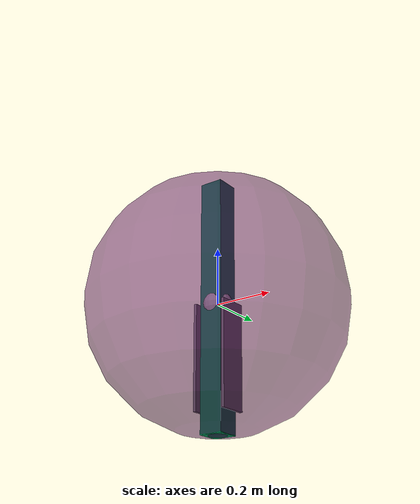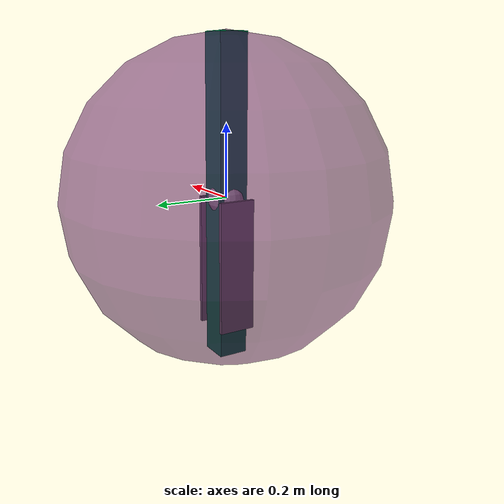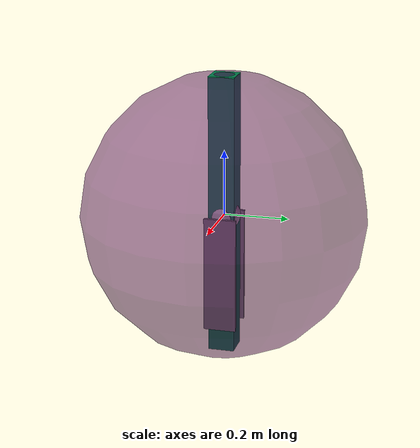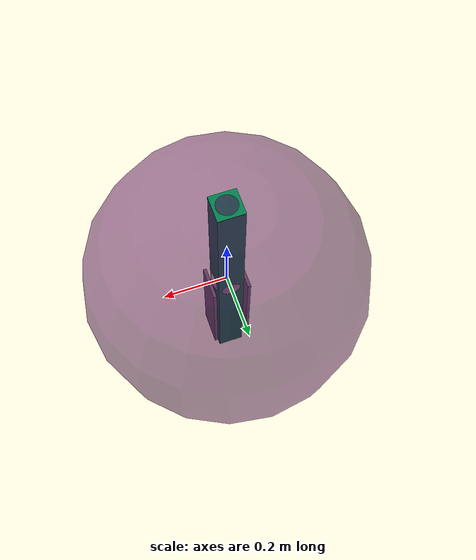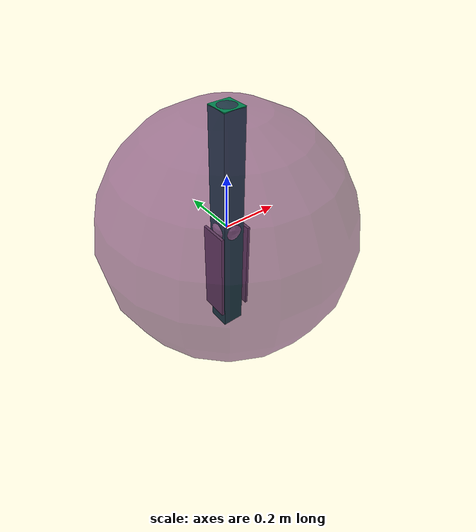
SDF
<sdf version='1.9'>
  <model name='bouncy'>

    <link name='outer_ball'>
      <inertial>
        <pose>0 0 0 0 0 0</pose>
        <mass>0.5</mass>
        <inertia>
          <ixx>0.064000000000000001</ixx>
          <ixy>0</ixy>
          <ixz>0</ixz>
          <iyy>0.064000000000000001</iyy>
          <iyz>0</iyz>
          <izz>0.064000000000000001</izz>
        </inertia>
      </inertial>
      <collision name='outer_ball_collision'>
        <pose>0 0 0 0 0 0</pose>
        <geometry>
          <sphere>
            <radius>0.44</radius>
          </sphere>
        </geometry>
        <surface>
          <bounce>
            <restitution_coefficient>1</restitution_coefficient>
            <threshold>0.10000000000000001</threshold>
          </bounce>
          <friction>
            <torsional>
              <coefficient>0.20000000000000001</coefficient>
              <surface_radius>0.5</surface_radius>
              <use_patch_radius>false</use_patch_radius>
            </torsional>
            <ode/>
          </friction>
          <contact>
            <poissons_ratio>0.48999999999999999</poissons_ratio>
            <elastic_modulus>0.29999999999999999</elastic_modulus>
            <ode/>
          </contact>
        </surface>
      </collision>
      <visual name='outer_ball_visual'>
        <pose>0 0 0 0 0 0</pose>
        <geometry>
          <sphere>
            <radius>0.44</radius>
          </sphere>
        </geometry>
        <material>
          <ambient>0.3 0 0.3 0.5</ambient>
          <diffuse>0.3 0 0.3 0.5</diffuse>
          <specular>0 0 0 0.5</specular>
          <emissive>0 0 0 0.5</emissive>
        </material>
      </visual>
      <velocity_decay>
        <linear>0.10000000000000001</linear>
        <angular>0.10000000000000001</angular>
      </velocity_decay>
    </link>

    <joint name='joint_outer_ball_rotation_engin' type='revolute'>
      <pose relative_to='outer_ball'>0 0 0 0 0 0</pose>
      <parent>outer_ball</parent>
      <child>rotation_engin</child>
      <axis>
        <xyz>0 0 1</xyz>
        <limit>
          <effort>10000</effort>
          <velocity>5</velocity>
          <lower>-10000000000000000</lower>
          <upper>10000000000000000</upper>
        </limit>
        <dynamics>
          <spring_reference>0</spring_reference>
          <spring_stiffness>0</spring_stiffness>
        </dynamics>
      </axis>
    </joint>
    <link name='rotation_engin'>
      <pose relative_to='joint_outer_ball_rotation_engin'>0 0 0 0 0 0</pose>
      <inertial>
        <pose>0 0 0 0 0 0</pose>
        <mass>1.2</mass>
        <inertia>
          <ixx>0.053800000000000001</ixx>
          <ixy>0</ixy>
          <ixz>0</ixz>
          <iyy>0.053800000000000001</iyy>
          <iyz>0</iyz>
          <izz>0.00106</izz>
        </inertia>
      </inertial>
      <collision name='rotation_engin_collision'>
        <pose>0 0 0 0 0 0</pose>
        <geometry>
          <box>
            <size>0.08 0.08 0.87</size>
          </box>
        </geometry>
        <surface>
          <contact>
            <ode/>
          </contact>
          <friction>
            <ode/>
          </friction>
        </surface>
      </collision>
      <visual name='rotation_engin_visual'>
        <pose>0 0 0 0 0 0</pose>
        <geometry>
          <box>
            <size>0.08 0.08 0.87</size>
          </box>
        </geometry>
        <material>
          <ambient>0 0.5 0.3 1</ambient>
          <diffuse>0 0.5 0.3 1</diffuse>
          <specular>0 0 0 1</specular>
          <emissive>0 0 0 1</emissive>
        </material>
      </visual>
    </link>
    <joint name='joint_rotation_engin_pull_engin' type='prismatic'>
      <pose relative_to='rotation_engin'>0 0 0 0 0 0</pose>
      <parent>rotation_engin</parent>
      <child>pull_engin</child>
      <axis>
        <xyz>0 0 1</xyz>
        <limit>
          <lower>-0.40000000000000002</lower>
          <upper>0</upper>
          <effort>10000</effort>
          <velocity>1000</velocity>
        </limit>
        <dynamics>
          <spring_reference>0</spring_reference>
          <spring_stiffness>0</spring_stiffness>
        </dynamics>
      </axis>
    </joint>
    <link name='pull_engin'>
      <pose relative_to='joint_rotation_engin_pull_engin'>0 0 0 0 0 0</pose>
      <inertial>
        <pose>0 0 0 0 0 0</pose>
        <mass>1.2</mass>
        <inertia>
          <ixx>0.001</ixx>
          <ixy>0</ixy>
          <ixz>0</ixz>
          <iyy>0.001</iyy>
          <iyz>0</iyz>
          <izz>0.001</izz>
        </inertia>
      </inertial>
      <collision name='pull_engin_fixed_joint_lump__collision_collision'>
        <pose>0 0 0 0 0 0</pose>
        <geometry>
          <sphere>
            <radius>0.050000000000000003</radius>
          </sphere>
        </geometry>
      </collision>
      <visual name='pull_engin_visual'>
        <pose>0 0 0 0 0 0</pose>
        <geometry>
          <sphere>
            <radius>0.050000000000000003</radius>
          </sphere>
        </geometry>
      </visual>
    </link>
    <joint name='joint_pull_engin_rotating_arm1' type='revolute'>
      <pose relative_to='pull_engin'>-0.055 0 0 3.141 0 0</pose>
      <parent>pull_engin</parent>
      <child>rotating_arm1</child>
      <axis>
        <xyz>1 0 0</xyz>
        <limit>
          <effort>10000</effort>
          <velocity>100</velocity>
          <lower>-10000000000000000</lower>
          <upper>10000000000000000</upper>
        </limit>
        <dynamics>
          <spring_reference>0</spring_reference>
          <spring_stiffness>0</spring_stiffness>
        </dynamics>
      </axis>
    </joint>
    <link name='rotating_arm1'>
      <pose relative_to='joint_pull_engin_rotating_arm1'>0 0 0 0 0 0</pose>
      <inertial>
        <pose>0 0 0.18 0 0 0</pose>
        <mass>3.2000000000000002</mass>
        <inertia>
          <ixx>0.011599999999999999</ixx>
          <ixy>0</ixy>
          <ixz>0</ixz>
          <iyy>0.010800000000000001</iyy>
          <iyz>0</iyz>
          <izz>0.00084199999999999998</izz>
        </inertia>
      </inertial>
      <collision name='rotating_arm1_collision'>
        <pose>0 0 0.18 0 0 0</pose>
        <geometry>
          <box>
            <size>0.01 0.1 0.36</size>
          </box>
        </geometry>
        <surface>
          <contact>
            <ode/>
          </contact>
          <friction>
            <ode/>
          </friction>
        </surface>
      </collision>
      <visual name='rotating_arm1_visual'>
        <pose>0 0 0.18 0 0 0</pose>
        <geometry>
          <box>
            <size>0.01 0.1 0.36</size>
          </box>
        </geometry>
        <material>
          <ambient>0.5 0.5 0.5 1</ambient>
          <diffuse>0.5 0.5 0.5 1</diffuse>
          <specular>0 0 0 1</specular>
          <emissive>0 0 0 1</emissive>
        </material>
      </visual>
    </link>
    <joint name='joint_pull_engin_rotating_arm2' type='revolute'>
      <pose relative_to='pull_engin'>0.055 0 0 3.141 0 0</pose>
      <parent>pull_engin</parent>
      <child>rotating_arm2</child>
      <axis>
        <xyz>1 0 0</xyz>
        <limit>
          <effort>10000</effort>
          <velocity>100</velocity>
          <lower>-10000000000000000</lower>
          <upper>10000000000000000</upper>
        </limit>
        <dynamics>
          <spring_reference>0</spring_reference>
          <spring_stiffness>0</spring_stiffness>
        </dynamics>
      </axis>
    </joint>
    <link name='rotating_arm2'>
      <pose relative_to='joint_pull_engin_rotating_arm2'>0 0 0 0 0 0</pose>
      <inertial>
        <pose>0 0 0.18 0 0 0</pose>
        <mass>3.2000000000000002</mass>
        <inertia>
          <ixx>0.011599999999999999</ixx>
          <ixy>0</ixy>
          <ixz>0</ixz>
          <iyy>0.010800000000000001</iyy>
          <iyz>0</iyz>
          <izz>0.00084199999999999998</izz>
        </inertia>
      </inertial>
      <collision name='rotating_arm2_collision'>
        <pose>0 0 0.18 0 0 0</pose>
        <geometry>
          <box>
            <size>0.01 0.1 0.36</size>
          </box>
        </geometry>
        <surface>
          <contact>
            <ode/>
          </contact>
          <friction>
            <ode/>
          </friction>
        </surface>
      </collision>
      <visual name='rotating_arm2_visual'>
        <pose>0 0 0.18 0 0 0</pose>
        <geometry>
          <box>
            <size>0.01 0.1 0.36</size>
          </box>
        </geometry>
        <material>
          <ambient>0.5 0.5 0.5 1</ambient>
          <diffuse>0.5 0.5 0.5 1</diffuse>
          <specular>0 0 0 1</specular>
          <emissive>0 0 0 1</emissive>
        </material>
      </visual>
    </link>
    <plugin name='gz::sim::systems::JointPositionController' filename='ignition-gazebo-joint-position-controller-system'>
      <joint_name>joint_rotation_engin_pull_engin</joint_name>
      <topic>jump_cmd</topic>
      <p_gain>50</p_gain>
      <i_gain>1.0</i_gain>
      <d_gain>0.0</d_gain>
      <i_max>1</i_max>
      <i_min>-1</i_min>
      <cmd_max>1000</cmd_max>
      <cmd_min>-1000</cmd_min>
    </plugin>
    <plugin name='gz::sim::systems::JointController' filename='ignition-gazebo-joint-controller-system'>
      <topic>rot1_cmd</topic>
      <initial_velocity>0</initial_velocity>
      <joint_name>joint_pull_engin_rotating_arm1</joint_name>
      <use_force_commands>false</use_force_commands>
    </plugin>
    <plugin name='gz::sim::systems::JointController' filename='ignition-gazebo-joint-controller-system'>
      <topic>rot2_cmd</topic>
      <initial_velocity>0</initial_velocity>
      <joint_name>joint_pull_engin_rotating_arm2</joint_name>
      <use_force_commands>false</use_force_commands>
    </plugin>
    <plugin name='gz::sim::systems::JointPositionController' filename='ignition-gazebo-joint-position-controller-system'>
      <joint_name>joint_outer_ball_rotation_engin</joint_name>
      <topic>turn_cmd</topic>
      <p_gain>1</p_gain>
      <i_gain>0.01</i_gain>
      <d_gain>0.3</d_gain>
      <i_max>1</i_max>
      <i_min>-1</i_min>
      <cmd_max>1000</cmd_max>
      <cmd_min>-1000</cmd_min>
    </plugin>
    <plugin name='gz::sim::systems::PosePublisher' filename='ignition-gazebo-pose-publisher-system'>
      <publish_link_pose>true</publish_link_pose>
      <publish_collision_pose>false</publish_collision_pose>
      <publish_visual_pose>false</publish_visual_pose>
      <publish_nested_model_pose>false</publish_nested_model_pose>
      <use_pose_vector_msg>true</use_pose_vector_msg>
      <update_frequency>1</update_frequency>
    </plugin>
    <plugin name='gz::sim::systems::PosePublisher' filename='ignition-gazebo-pose-publisher-system'>
      <publish_link_pose>true</publish_link_pose>
      <publish_collision_pose>false</publish_collision_pose>
      <publish_visual_pose>false</publish_visual_pose>
      <publish_nested_model_pose>false</publish_nested_model_pose>
      <use_pose_vector_msg>true</use_pose_vector_msg>
    </plugin>
  </model>
</sdf>
